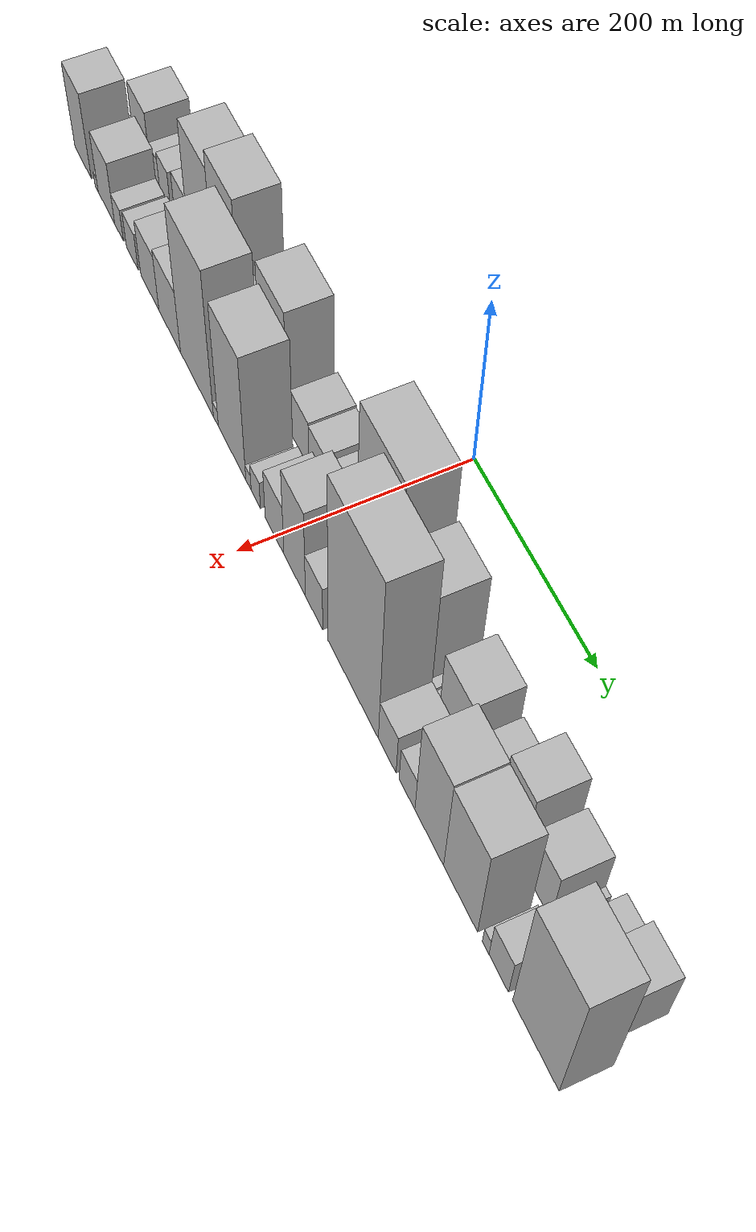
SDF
<sdf version="1.6">
 <world name="default">
  <scene>
   <sky><clouds><speed>12</speed></clouds></sky>
   <ambient>0.4 0.4 0.4 1</ambient>
   <background>0.7 0.7 0.7 1</background>
   <shadows>1</shadows>
  </scene>
  <gravity>0 0 -9.8066</gravity>
  <magnetic_field>6e-06 2.3e-05 -4.2e-05</magnetic_field>
  <physics default="0" name="default_physics" type="ode">
   <ode>
    <solver>
     <type>quick</type>
     <iters>10</iters>
     <sor>1.0</sor>
     <use_dynamic_moi_rescaling>0</use_dynamic_moi_rescaling>
    </solver>
    <constraints>
     <cfm>0</cfm>
     <erp>0.2</erp>
     <contact_max_correcting_vel>100</contact_max_correcting_vel>
     <contact_surface_layer>0.001</contact_surface_layer>
    </constraints>
   </ode>
   <max_step_size>0.004</max_step_size>
   <real_time_factor>1</real_time_factor>
   <real_time_update_rate>250</real_time_update_rate>
  </physics>
  <light name="sun" type="directional">
   <pose>0 0 10 0 0 0</pose>
   <diffuse>0.8 0.8 0.8 1</diffuse>
   <specular>0.2 0.2 0.2 1</specular>
   <attenuation>
    <range>1000</range>
    <constant>0.9</constant>
    <linear>0.01</linear>
    <quadratic>0.001</quadratic>
   </attenuation>
   <direction>-0.5 0.1 -0.9</direction>
  </light>
  <model name="building_1">
   <static>1</static>
   <pose>100.0000 -424.5669 0 0.000000 0.000000 0.000000</pose>
   <link name="link">
    <pose>0 0 9.00 0 0 0</pose>
    <collision name="collision"><geometry><box><size>40.0000 8.8662 18.0000</size></box></geometry></collision>
    <visual name="visual">
     <cast_shadows>0</cast_shadows>
     <geometry><box><size>40.0000 8.8662 18.0000</size></box></geometry>
     <material>
      <script>
       <uri>model://HANNAS_wall/materials/scripts</uri>
       <uri>model://HANNAS_wall/materials/textures</uri>
       <name>vrc/HANNAS_wall</name>
      </script>
     </material>
    </visual>
   </link>
  </model>
  <model name="building_2">
   <static>1</static>
   <pose>100.0000 -397.2516 0 0.000000 0.000000 0.000000</pose>
   <link name="link">
    <pose>0 0 36.00 0 0 0</pose>
    <collision name="collision"><geometry><box><size>40.0000 39.7645 72.0000</size></box></geometry></collision>
    <visual name="visual">
     <cast_shadows>0</cast_shadows>
     <geometry><box><size>40.0000 39.7645 72.0000</size></box></geometry>
     <material>
      <script>
       <uri>model://HANNAS_wall/materials/scripts</uri>
       <uri>model://HANNAS_wall/materials/textures</uri>
       <name>vrc/HANNAS_wall</name>
      </script>
     </material>
    </visual>
   </link>
  </model>
  <model name="building_3">
   <static>1</static>
   <pose>100.0000 -367.1913 0 0.000000 0.000000 0.000000</pose>
   <link name="link">
    <pose>0 0 18.00 0 0 0</pose>
    <collision name="collision"><geometry><box><size>40.0000 20.3561 36.0000</size></box></geometry></collision>
    <visual name="visual">
     <cast_shadows>0</cast_shadows>
     <geometry><box><size>40.0000 20.3561 36.0000</size></box></geometry>
     <material>
      <script>
       <uri>model://HANNAS_wall/materials/scripts</uri>
       <uri>model://HANNAS_wall/materials/textures</uri>
       <name>vrc/HANNAS_wall</name>
      </script>
     </material>
    </visual>
   </link>
  </model>
  <model name="building_4">
   <static>1</static>
   <pose>100.0000 -344.6293 0 0.000000 0.000000 0.000000</pose>
   <link name="link">
    <pose>0 0 22.50 0 0 0</pose>
    <collision name="collision"><geometry><box><size>40.0000 24.7679 45.0000</size></box></geometry></collision>
    <visual name="visual">
     <cast_shadows>0</cast_shadows>
     <geometry><box><size>40.0000 24.7679 45.0000</size></box></geometry>
     <material>
      <script>
       <uri>model://HANNAS_wall/materials/scripts</uri>
       <uri>model://HANNAS_wall/materials/textures</uri>
       <name>vrc/HANNAS_wall</name>
      </script>
     </material>
    </visual>
   </link>
  </model>
  <model name="building_5">
   <static>1</static>
   <pose>100.0000 -306.7148 0 0.000000 0.000000 0.000000</pose>
   <link name="link">
    <pose>0 0 28.50 0 0 0</pose>
    <collision name="collision"><geometry><box><size>40.0000 31.0610 57.0000</size></box></geometry></collision>
    <visual name="visual">
     <cast_shadows>0</cast_shadows>
     <geometry><box><size>40.0000 31.0610 57.0000</size></box></geometry>
     <material>
      <script>
       <uri>model://HANNAS_wall/materials/scripts</uri>
       <uri>model://HANNAS_wall/materials/textures</uri>
       <name>vrc/HANNAS_wall</name>
      </script>
     </material>
    </visual>
   </link>
  </model>
  <model name="building_6">
   <static>1</static>
   <pose>100.0000 -263.0506 0 0.000000 0.000000 0.000000</pose>
   <link name="link">
    <pose>0 0 75.00 0 0 0</pose>
    <collision name="collision"><geometry><box><size>40.0000 56.2675 150.0000</size></box></geometry></collision>
    <visual name="visual">
     <cast_shadows>0</cast_shadows>
     <geometry><box><size>40.0000 56.2675 150.0000</size></box></geometry>
     <material>
      <script>
       <uri>model://HANNAS_wall/materials/scripts</uri>
       <uri>model://HANNAS_wall/materials/textures</uri>
       <name>vrc/HANNAS_wall</name>
      </script>
     </material>
    </visual>
   </link>
  </model>
  <model name="building_7">
   <static>1</static>
   <pose>100.0000 -208.0769 0 0.000000 0.000000 0.000000</pose>
   <link name="link">
    <pose>0 0 85.50 0 0 0</pose>
    <collision name="collision"><geometry><box><size>40.0000 53.6799 171.0000</size></box></geometry></collision>
    <visual name="visual">
     <cast_shadows>0</cast_shadows>
     <geometry><box><size>40.0000 53.6799 171.0000</size></box></geometry>
     <material>
      <script>
       <uri>model://HANNAS_wall/materials/scripts</uri>
       <uri>model://HANNAS_wall/materials/textures</uri>
       <name>vrc/HANNAS_wall</name>
      </script>
     </material>
    </visual>
   </link>
  </model>
  <model name="building_8">
   <static>1</static>
   <pose>100.0000 -162.0882 0 0.000000 0.000000 0.000000</pose>
   <link name="link">
    <pose>0 0 37.50 0 0 0</pose>
    <collision name="collision"><geometry><box><size>40.0000 38.2975 75.0000</size></box></geometry></collision>
    <visual name="visual">
     <cast_shadows>0</cast_shadows>
     <geometry><box><size>40.0000 38.2975 75.0000</size></box></geometry>
     <material>
      <script>
       <uri>model://HANNAS_wall/materials/scripts</uri>
       <uri>model://HANNAS_wall/materials/textures</uri>
       <name>vrc/HANNAS_wall</name>
      </script>
     </material>
    </visual>
   </link>
  </model>
  <model name="building_9">
   <static>1</static>
   <pose>100.0000 -113.6515 0 0.000000 0.000000 0.000000</pose>
   <link name="link">
    <pose>0 0 73.50 0 0 0</pose>
    <collision name="collision"><geometry><box><size>40.0000 52.5759 147.0000</size></box></geometry></collision>
    <visual name="visual">
     <cast_shadows>0</cast_shadows>
     <geometry><box><size>40.0000 52.5759 147.0000</size></box></geometry>
     <material>
      <script>
       <uri>model://HANNAS_wall/materials/scripts</uri>
       <uri>model://HANNAS_wall/materials/textures</uri>
       <name>vrc/HANNAS_wall</name>
      </script>
     </material>
    </visual>
   </link>
  </model>
  <model name="building_10">
   <static>1</static>
   <pose>100.0000 -63.4851 0 0.000000 0.000000 0.000000</pose>
   <link name="link">
    <pose>0 0 30.00 0 0 0</pose>
    <collision name="collision"><geometry><box><size>40.0000 33.7569 60.0000</size></box></geometry></collision>
    <visual name="visual">
     <cast_shadows>0</cast_shadows>
     <geometry><box><size>40.0000 33.7569 60.0000</size></box></geometry>
     <material>
      <script>
       <uri>model://HANNAS_wall/materials/scripts</uri>
       <uri>model://HANNAS_wall/materials/textures</uri>
       <name>vrc/HANNAS_wall</name>
      </script>
     </material>
    </visual>
   </link>
  </model>
  <model name="building_11">
   <static>1</static>
   <pose>100.0000 -31.4817 0 0.000000 0.000000 0.000000</pose>
   <link name="link">
    <pose>0 0 28.50 0 0 0</pose>
    <collision name="collision"><geometry><box><size>40.0000 30.2500 57.0000</size></box></geometry></collision>
    <visual name="visual">
     <cast_shadows>0</cast_shadows>
     <geometry><box><size>40.0000 30.2500 57.0000</size></box></geometry>
     <material>
      <script>
       <uri>model://HANNAS_wall/materials/scripts</uri>
       <uri>model://HANNAS_wall/materials/textures</uri>
       <name>vrc/HANNAS_wall</name>
      </script>
     </material>
    </visual>
   </link>
  </model>
  <model name="building_12">
   <static>1</static>
   <pose>100.0000 -3.8752 0 0.000000 0.000000 0.000000</pose>
   <link name="link">
    <pose>0 0 24.00 0 0 0</pose>
    <collision name="collision"><geometry><box><size>40.0000 24.9629 48.0000</size></box></geometry></collision>
    <visual name="visual">
     <cast_shadows>0</cast_shadows>
     <geometry><box><size>40.0000 24.9629 48.0000</size></box></geometry>
     <material>
      <script>
       <uri>model://HANNAS_wall/materials/scripts</uri>
       <uri>model://HANNAS_wall/materials/textures</uri>
       <name>vrc/HANNAS_wall</name>
      </script>
     </material>
    </visual>
   </link>
  </model>
  <model name="building_13">
   <static>1</static>
   <pose>100.0000 24.8235 0 0.000000 0.000000 0.000000</pose>
   <link name="link">
    <pose>0 0 31.50 0 0 0</pose>
    <collision name="collision"><geometry><box><size>40.0000 32.4345 63.0000</size></box></geometry></collision>
    <visual name="visual">
     <cast_shadows>0</cast_shadows>
     <geometry><box><size>40.0000 32.4345 63.0000</size></box></geometry>
     <material>
      <script>
       <uri>model://HANNAS_wall/materials/scripts</uri>
       <uri>model://HANNAS_wall/materials/textures</uri>
       <name>vrc/HANNAS_wall</name>
      </script>
     </material>
    </visual>
   </link>
  </model>
  <model name="building_14">
   <static>1</static>
   <pose>100.0000 77.2374 0 0.000000 0.000000 0.000000</pose>
   <link name="link">
    <pose>0 0 102.00 0 0 0</pose>
    <collision name="collision"><geometry><box><size>40.0000 72.3935 204.0000</size></box></geometry></collision>
    <visual name="visual">
     <cast_shadows>0</cast_shadows>
     <geometry><box><size>40.0000 72.3935 204.0000</size></box></geometry>
     <material>
      <script>
       <uri>model://HANNAS_wall/materials/scripts</uri>
       <uri>model://HANNAS_wall/materials/textures</uri>
       <name>vrc/HANNAS_wall</name>
      </script>
     </material>
    </visual>
   </link>
  </model>
  <model name="building_15">
   <static>1</static>
   <pose>100.0000 141.5646 0 0.000000 0.000000 0.000000</pose>
   <link name="link">
    <pose>0 0 69.00 0 0 0</pose>
    <collision name="collision"><geometry><box><size>40.0000 48.2609 138.0000</size></box></geometry></collision>
    <visual name="visual">
     <cast_shadows>0</cast_shadows>
     <geometry><box><size>40.0000 48.2609 138.0000</size></box></geometry>
     <material>
      <script>
       <uri>model://HANNAS_wall/materials/scripts</uri>
       <uri>model://HANNAS_wall/materials/textures</uri>
       <name>vrc/HANNAS_wall</name>
      </script>
     </material>
    </visual>
   </link>
  </model>
  <model name="building_16">
   <static>1</static>
   <pose>100.0000 170.1767 0 0.000000 0.000000 0.000000</pose>
   <link name="link">
    <pose>0 0 10.50 0 0 0</pose>
    <collision name="collision"><geometry><box><size>40.0000 8.9633 21.0000</size></box></geometry></collision>
    <visual name="visual">
     <cast_shadows>0</cast_shadows>
     <geometry><box><size>40.0000 8.9633 21.0000</size></box></geometry>
     <material>
      <script>
       <uri>model://HANNAS_wall/materials/scripts</uri>
       <uri>model://HANNAS_wall/materials/textures</uri>
       <name>vrc/HANNAS_wall</name>
      </script>
     </material>
    </visual>
   </link>
  </model>
  <model name="building_17">
   <static>1</static>
   <pose>100.0000 178.5999 0 0.000000 0.000000 0.000000</pose>
   <link name="link">
    <pose>0 0 9.00 0 0 0</pose>
    <collision name="collision"><geometry><box><size>40.0000 7.8832 18.0000</size></box></geometry></collision>
    <visual name="visual">
     <cast_shadows>0</cast_shadows>
     <geometry><box><size>40.0000 7.8832 18.0000</size></box></geometry>
     <material>
      <script>
       <uri>model://HANNAS_wall/materials/scripts</uri>
       <uri>model://HANNAS_wall/materials/textures</uri>
       <name>vrc/HANNAS_wall</name>
      </script>
     </material>
    </visual>
   </link>
  </model>
  <model name="building_18">
   <static>1</static>
   <pose>100.0000 204.4140 0 0.000000 0.000000 0.000000</pose>
   <link name="link">
    <pose>0 0 43.50 0 0 0</pose>
    <collision name="collision"><geometry><box><size>40.0000 43.7451 87.0000</size></box></geometry></collision>
    <visual name="visual">
     <cast_shadows>0</cast_shadows>
     <geometry><box><size>40.0000 43.7451 87.0000</size></box></geometry>
     <material>
      <script>
       <uri>model://HANNAS_wall/materials/scripts</uri>
       <uri>model://HANNAS_wall/materials/textures</uri>
       <name>vrc/HANNAS_wall</name>
      </script>
     </material>
    </visual>
   </link>
  </model>
  <model name="building_19">
   <static>1</static>
   <pose>100.0000 242.1128 0 0.000000 0.000000 0.000000</pose>
   <link name="link">
    <pose>0 0 22.50 0 0 0</pose>
    <collision name="collision"><geometry><box><size>40.0000 25.6525 45.0000</size></box></geometry></collision>
    <visual name="visual">
     <cast_shadows>0</cast_shadows>
     <geometry><box><size>40.0000 25.6525 45.0000</size></box></geometry>
     <material>
      <script>
       <uri>model://HANNAS_wall/materials/scripts</uri>
       <uri>model://HANNAS_wall/materials/textures</uri>
       <name>vrc/HANNAS_wall</name>
      </script>
     </material>
    </visual>
   </link>
  </model>
  <model name="building_20">
   <static>1</static>
   <pose>100.0000 265.5153 0 0.000000 0.000000 0.000000</pose>
   <link name="link">
    <pose>0 0 19.50 0 0 0</pose>
    <collision name="collision"><geometry><box><size>40.0000 21.1525 39.0000</size></box></geometry></collision>
    <visual name="visual">
     <cast_shadows>0</cast_shadows>
     <geometry><box><size>40.0000 21.1525 39.0000</size></box></geometry>
     <material>
      <script>
       <uri>model://HANNAS_wall/materials/scripts</uri>
       <uri>model://HANNAS_wall/materials/textures</uri>
       <name>vrc/HANNAS_wall</name>
      </script>
     </material>
    </visual>
   </link>
  </model>
  <model name="building_21">
   <static>1</static>
   <pose>100.0000 294.0036 0 0.000000 0.000000 0.000000</pose>
   <link name="link">
    <pose>0 0 55.50 0 0 0</pose>
    <collision name="collision"><geometry><box><size>40.0000 35.8241 111.0000</size></box></geometry></collision>
    <visual name="visual">
     <cast_shadows>0</cast_shadows>
     <geometry><box><size>40.0000 35.8241 111.0000</size></box></geometry>
     <material>
      <script>
       <uri>model://HANNAS_wall/materials/scripts</uri>
       <uri>model://HANNAS_wall/materials/textures</uri>
       <name>vrc/HANNAS_wall</name>
      </script>
     </material>
    </visual>
   </link>
  </model>
  <model name="building_22">
   <static>1</static>
   <pose>100.0000 334.6105 0 0.000000 0.000000 0.000000</pose>
   <link name="link">
    <pose>0 0 36.00 0 0 0</pose>
    <collision name="collision"><geometry><box><size>40.0000 37.3898 72.0000</size></box></geometry></collision>
    <visual name="visual">
     <cast_shadows>0</cast_shadows>
     <geometry><box><size>40.0000 37.3898 72.0000</size></box></geometry>
     <material>
      <script>
       <uri>model://HANNAS_wall/materials/scripts</uri>
       <uri>model://HANNAS_wall/materials/textures</uri>
       <name>vrc/HANNAS_wall</name>
      </script>
     </material>
    </visual>
   </link>
  </model>
  <model name="building_23">
   <static>1</static>
   <pose>100.0000 357.2480 0 0.000000 0.000000 0.000000</pose>
   <link name="link">
    <pose>0 0 9.00 0 0 0</pose>
    <collision name="collision"><geometry><box><size>40.0000 7.8852 18.0000</size></box></geometry></collision>
    <visual name="visual">
     <cast_shadows>0</cast_shadows>
     <geometry><box><size>40.0000 7.8852 18.0000</size></box></geometry>
     <material>
      <script>
       <uri>model://HANNAS_wall/materials/scripts</uri>
       <uri>model://HANNAS_wall/materials/textures</uri>
       <name>vrc/HANNAS_wall</name>
      </script>
     </material>
    </visual>
   </link>
  </model>
  <model name="building_24">
   <static>1</static>
   <pose>100.0000 369.7356 0 0.000000 0.000000 0.000000</pose>
   <link name="link">
    <pose>0 0 7.50 0 0 0</pose>
    <collision name="collision"><geometry><box><size>40.0000 7.0900 15.0000</size></box></geometry></collision>
    <visual name="visual">
     <cast_shadows>0</cast_shadows>
     <geometry><box><size>40.0000 7.0900 15.0000</size></box></geometry>
     <material>
      <script>
       <uri>model://HANNAS_wall/materials/scripts</uri>
       <uri>model://HANNAS_wall/materials/textures</uri>
       <name>vrc/HANNAS_wall</name>
      </script>
     </material>
    </visual>
   </link>
  </model>
  <model name="building_25">
   <static>1</static>
   <pose>100.0000 387.6641 0 0.000000 0.000000 0.000000</pose>
   <link name="link">
    <pose>0 0 27.00 0 0 0</pose>
    <collision name="collision"><geometry><box><size>40.0000 28.7670 54.0000</size></box></geometry></collision>
    <visual name="visual">
     <cast_shadows>0</cast_shadows>
     <geometry><box><size>40.0000 28.7670 54.0000</size></box></geometry>
     <material>
      <script>
       <uri>model://HANNAS_wall/materials/scripts</uri>
       <uri>model://HANNAS_wall/materials/textures</uri>
       <name>vrc/HANNAS_wall</name>
      </script>
     </material>
    </visual>
   </link>
  </model>
  <model name="building_26">
   <static>1</static>
   <pose>100.0000 422.2964 0 0.000000 0.000000 0.000000</pose>
   <link name="link">
    <pose>0 0 37.50 0 0 0</pose>
    <collision name="collision"><geometry><box><size>40.0000 40.4977 75.0000</size></box></geometry></collision>
    <visual name="visual">
     <cast_shadows>0</cast_shadows>
     <geometry><box><size>40.0000 40.4977 75.0000</size></box></geometry>
     <material>
      <script>
       <uri>model://HANNAS_wall/materials/scripts</uri>
       <uri>model://HANNAS_wall/materials/textures</uri>
       <name>vrc/HANNAS_wall</name>
      </script>
     </material>
    </visual>
   </link>
  </model>
  <model name="building_27">
   <static>1</static>
   <pose>149.0000 -411.1014 0 0.000000 0.000000 0.000000</pose>
   <link name="link">
    <pose>0 0 51.00 0 0 0</pose>
    <collision name="collision"><geometry><box><size>40.0000 39.7972 102.0000</size></box></geometry></collision>
    <visual name="visual">
     <cast_shadows>0</cast_shadows>
     <geometry><box><size>40.0000 39.7972 102.0000</size></box></geometry>
     <material>
      <script>
       <uri>model://HANNAS_wall/materials/scripts</uri>
       <uri>model://HANNAS_wall/materials/textures</uri>
       <name>vrc/HANNAS_wall</name>
      </script>
     </material>
    </visual>
   </link>
  </model>
  <model name="building_28">
   <static>1</static>
   <pose>149.0000 -378.4729 0 0.000000 0.000000 0.000000</pose>
   <link name="link">
    <pose>0 0 9.00 0 0 0</pose>
    <collision name="collision"><geometry><box><size>40.0000 7.4599 18.0000</size></box></geometry></collision>
    <visual name="visual">
     <cast_shadows>0</cast_shadows>
     <geometry><box><size>40.0000 7.4599 18.0000</size></box></geometry>
     <material>
      <script>
       <uri>model://HANNAS_wall/materials/scripts</uri>
       <uri>model://HANNAS_wall/materials/textures</uri>
       <name>vrc/HANNAS_wall</name>
      </script>
     </material>
    </visual>
   </link>
  </model>
  <model name="building_29">
   <static>1</static>
   <pose>149.0000 -355.3488 0 0.000000 0.000000 0.000000</pose>
   <link name="link">
    <pose>0 0 37.50 0 0 0</pose>
    <collision name="collision"><geometry><box><size>40.0000 38.7883 75.0000</size></box></geometry></collision>
    <visual name="visual">
     <cast_shadows>0</cast_shadows>
     <geometry><box><size>40.0000 38.7883 75.0000</size></box></geometry>
     <material>
      <script>
       <uri>model://HANNAS_wall/materials/scripts</uri>
       <uri>model://HANNAS_wall/materials/textures</uri>
       <name>vrc/HANNAS_wall</name>
      </script>
     </material>
    </visual>
   </link>
  </model>
  <model name="building_30">
   <static>1</static>
   <pose>149.0000 -325.8457 0 0.000000 0.000000 0.000000</pose>
   <link name="link">
    <pose>0 0 19.50 0 0 0</pose>
    <collision name="collision"><geometry><box><size>40.0000 20.2178 39.0000</size></box></geometry></collision>
    <visual name="visual">
     <cast_shadows>0</cast_shadows>
     <geometry><box><size>40.0000 20.2178 39.0000</size></box></geometry>
     <material>
      <script>
       <uri>model://HANNAS_wall/materials/scripts</uri>
       <uri>model://HANNAS_wall/materials/textures</uri>
       <name>vrc/HANNAS_wall</name>
      </script>
     </material>
    </visual>
   </link>
  </model>
  <model name="building_31">
   <static>1</static>
   <pose>149.0000 -295.4647 0 0.000000 0.000000 0.000000</pose>
   <link name="link">
    <pose>0 0 22.50 0 0 0</pose>
    <collision name="collision"><geometry><box><size>40.0000 26.5442 45.0000</size></box></geometry></collision>
    <visual name="visual">
     <cast_shadows>0</cast_shadows>
     <geometry><box><size>40.0000 26.5442 45.0000</size></box></geometry>
     <material>
      <script>
       <uri>model://HANNAS_wall/materials/scripts</uri>
       <uri>model://HANNAS_wall/materials/textures</uri>
       <name>vrc/HANNAS_wall</name>
      </script>
     </material>
    </visual>
   </link>
  </model>
  <model name="building_32">
   <static>1</static>
   <pose>149.0000 -256.0464 0 0.000000 0.000000 0.000000</pose>
   <link name="link">
    <pose>0 0 34.50 0 0 0</pose>
    <collision name="collision"><geometry><box><size>40.0000 40.2923 69.0000</size></box></geometry></collision>
    <visual name="visual">
     <cast_shadows>0</cast_shadows>
     <geometry><box><size>40.0000 40.2923 69.0000</size></box></geometry>
     <material>
      <script>
       <uri>model://HANNAS_wall/materials/scripts</uri>
       <uri>model://HANNAS_wall/materials/textures</uri>
       <name>vrc/HANNAS_wall</name>
      </script>
     </material>
    </visual>
   </link>
  </model>
  <model name="building_33">
   <static>1</static>
   <pose>149.0000 -212.5605 0 0.000000 0.000000 0.000000</pose>
   <link name="link">
    <pose>0 0 39.00 0 0 0</pose>
    <collision name="collision"><geometry><box><size>40.0000 46.6795 78.0000</size></box></geometry></collision>
    <visual name="visual">
     <cast_shadows>0</cast_shadows>
     <geometry><box><size>40.0000 46.6795 78.0000</size></box></geometry>
     <material>
      <script>
       <uri>model://HANNAS_wall/materials/scripts</uri>
       <uri>model://HANNAS_wall/materials/textures</uri>
       <name>vrc/HANNAS_wall</name>
      </script>
     </material>
    </visual>
   </link>
  </model>
  <model name="building_34">
   <static>1</static>
   <pose>149.0000 -154.9730 0 0.000000 0.000000 0.000000</pose>
   <link name="link">
    <pose>0 0 91.50 0 0 0</pose>
    <collision name="collision"><geometry><box><size>40.0000 68.4954 183.0000</size></box></geometry></collision>
    <visual name="visual">
     <cast_shadows>0</cast_shadows>
     <geometry><box><size>40.0000 68.4954 183.0000</size></box></geometry>
     <material>
      <script>
       <uri>model://HANNAS_wall/materials/scripts</uri>
       <uri>model://HANNAS_wall/materials/textures</uri>
       <name>vrc/HANNAS_wall</name>
      </script>
     </material>
    </visual>
   </link>
  </model>
  <model name="building_35">
   <static>1</static>
   <pose>149.0000 -115.7268 0 0.000000 0.000000 0.000000</pose>
   <link name="link">
    <pose>0 0 10.50 0 0 0</pose>
    <collision name="collision"><geometry><box><size>40.0000 9.9970 21.0000</size></box></geometry></collision>
    <visual name="visual">
     <cast_shadows>0</cast_shadows>
     <geometry><box><size>40.0000 9.9970 21.0000</size></box></geometry>
     <material>
      <script>
       <uri>model://HANNAS_wall/materials/scripts</uri>
       <uri>model://HANNAS_wall/materials/textures</uri>
       <name>vrc/HANNAS_wall</name>
      </script>
     </material>
    </visual>
   </link>
  </model>
  <model name="building_36">
   <static>1</static>
   <pose>149.0000 -83.3577 0 0.000000 0.000000 0.000000</pose>
   <link name="link">
    <pose>0 0 79.50 0 0 0</pose>
    <collision name="collision"><geometry><box><size>40.0000 54.7414 159.0000</size></box></geometry></collision>
    <visual name="visual">
     <cast_shadows>0</cast_shadows>
     <geometry><box><size>40.0000 54.7414 159.0000</size></box></geometry>
     <material>
      <script>
       <uri>model://HANNAS_wall/materials/scripts</uri>
       <uri>model://HANNAS_wall/materials/textures</uri>
       <name>vrc/HANNAS_wall</name>
      </script>
     </material>
    </visual>
   </link>
  </model>
  <model name="building_37">
   <static>1</static>
   <pose>149.0000 -50.7852 0 0.000000 0.000000 0.000000</pose>
   <link name="link">
    <pose>0 0 10.50 0 0 0</pose>
    <collision name="collision"><geometry><box><size>40.0000 10.4036 21.0000</size></box></geometry></collision>
    <visual name="visual">
     <cast_shadows>0</cast_shadows>
     <geometry><box><size>40.0000 10.4036 21.0000</size></box></geometry>
     <material>
      <script>
       <uri>model://HANNAS_wall/materials/scripts</uri>
       <uri>model://HANNAS_wall/materials/textures</uri>
       <name>vrc/HANNAS_wall</name>
      </script>
     </material>
    </visual>
   </link>
  </model>
  <model name="building_38">
   <static>1</static>
   <pose>149.0000 -36.5796 0 0.000000 0.000000 0.000000</pose>
   <link name="link">
    <pose>0 0 18.00 0 0 0</pose>
    <collision name="collision"><geometry><box><size>40.0000 18.0075 36.0000</size></box></geometry></collision>
    <visual name="visual">
     <cast_shadows>0</cast_shadows>
     <geometry><box><size>40.0000 18.0075 36.0000</size></box></geometry>
     <material>
      <script>
       <uri>model://HANNAS_wall/materials/scripts</uri>
       <uri>model://HANNAS_wall/materials/textures</uri>
       <name>vrc/HANNAS_wall</name>
      </script>
     </material>
    </visual>
   </link>
  </model>
  <model name="building_39">
   <static>1</static>
   <pose>149.0000 -0.8917 0 0.000000 0.000000 0.000000</pose>
   <link name="link">
    <pose>0 0 33.00 0 0 0</pose>
    <collision name="collision"><geometry><box><size>40.0000 35.3683 66.0000</size></box></geometry></collision>
    <visual name="visual">
     <cast_shadows>0</cast_shadows>
     <geometry><box><size>40.0000 35.3683 66.0000</size></box></geometry>
     <material>
      <script>
       <uri>model://HANNAS_wall/materials/scripts</uri>
       <uri>model://HANNAS_wall/materials/textures</uri>
       <name>vrc/HANNAS_wall</name>
      </script>
     </material>
    </visual>
   </link>
  </model>
  <model name="building_40">
   <static>1</static>
   <pose>149.0000 36.6306 0 0.000000 0.000000 0.000000</pose>
   <link name="link">
    <pose>0 0 58.50 0 0 0</pose>
    <collision name="collision"><geometry><box><size>40.0000 39.6763 117.0000</size></box></geometry></collision>
    <visual name="visual">
     <cast_shadows>0</cast_shadows>
     <geometry><box><size>40.0000 39.6763 117.0000</size></box></geometry>
     <material>
      <script>
       <uri>model://HANNAS_wall/materials/scripts</uri>
       <uri>model://HANNAS_wall/materials/textures</uri>
       <name>vrc/HANNAS_wall</name>
      </script>
     </material>
    </visual>
   </link>
  </model>
  <model name="building_41">
   <static>1</static>
   <pose>149.0000 72.0424 0 0.000000 0.000000 0.000000</pose>
   <link name="link">
    <pose>0 0 30.00 0 0 0</pose>
    <collision name="collision"><geometry><box><size>40.0000 31.1471 60.0000</size></box></geometry></collision>
    <visual name="visual">
     <cast_shadows>0</cast_shadows>
     <geometry><box><size>40.0000 31.1471 60.0000</size></box></geometry>
     <material>
      <script>
       <uri>model://HANNAS_wall/materials/scripts</uri>
       <uri>model://HANNAS_wall/materials/textures</uri>
       <name>vrc/HANNAS_wall</name>
      </script>
     </material>
    </visual>
   </link>
  </model>
  <model name="building_42">
   <static>1</static>
   <pose>149.0000 140.1961 0 0.000000 0.000000 0.000000</pose>
   <link name="link">
    <pose>0 0 112.50 0 0 0</pose>
    <collision name="collision"><geometry><box><size>40.0000 87.1603 225.0000</size></box></geometry></collision>
    <visual name="visual">
     <cast_shadows>0</cast_shadows>
     <geometry><box><size>40.0000 87.1603 225.0000</size></box></geometry>
     <material>
      <script>
       <uri>model://HANNAS_wall/materials/scripts</uri>
       <uri>model://HANNAS_wall/materials/textures</uri>
       <name>vrc/HANNAS_wall</name>
      </script>
     </material>
    </visual>
   </link>
  </model>
  <model name="building_43">
   <static>1</static>
   <pose>149.0000 198.4248 0 0.000000 0.000000 0.000000</pose>
   <link name="link">
    <pose>0 0 28.50 0 0 0</pose>
    <collision name="collision"><geometry><box><size>40.0000 29.2972 57.0000</size></box></geometry></collision>
    <visual name="visual">
     <cast_shadows>0</cast_shadows>
     <geometry><box><size>40.0000 29.2972 57.0000</size></box></geometry>
     <material>
      <script>
       <uri>model://HANNAS_wall/materials/scripts</uri>
       <uri>model://HANNAS_wall/materials/textures</uri>
       <name>vrc/HANNAS_wall</name>
      </script>
     </material>
    </visual>
   </link>
  </model>
  <model name="building_44">
   <static>1</static>
   <pose>149.0000 230.8330 0 0.000000 0.000000 0.000000</pose>
   <link name="link">
    <pose>0 0 24.00 0 0 0</pose>
    <collision name="collision"><geometry><box><size>40.0000 25.5192 48.0000</size></box></geometry></collision>
    <visual name="visual">
     <cast_shadows>0</cast_shadows>
     <geometry><box><size>40.0000 25.5192 48.0000</size></box></geometry>
     <material>
      <script>
       <uri>model://HANNAS_wall/materials/scripts</uri>
       <uri>model://HANNAS_wall/materials/textures</uri>
       <name>vrc/HANNAS_wall</name>
      </script>
     </material>
    </visual>
   </link>
  </model>
  <model name="building_45">
   <static>1</static>
   <pose>149.0000 266.2361 0 0.000000 0.000000 0.000000</pose>
   <link name="link">
    <pose>0 0 67.50 0 0 0</pose>
    <collision name="collision"><geometry><box><size>40.0000 45.2870 135.0000</size></box></geometry></collision>
    <visual name="visual">
     <cast_shadows>0</cast_shadows>
     <geometry><box><size>40.0000 45.2870 135.0000</size></box></geometry>
     <material>
      <script>
       <uri>model://HANNAS_wall/materials/scripts</uri>
       <uri>model://HANNAS_wall/materials/textures</uri>
       <name>vrc/HANNAS_wall</name>
      </script>
     </material>
    </visual>
   </link>
  </model>
  <model name="building_46">
   <static>1</static>
   <pose>149.0000 314.7834 0 0.000000 0.000000 0.000000</pose>
   <link name="link">
    <pose>0 0 66.00 0 0 0</pose>
    <collision name="collision"><geometry><box><size>40.0000 51.8076 132.0000</size></box></geometry></collision>
    <visual name="visual">
     <cast_shadows>0</cast_shadows>
     <geometry><box><size>40.0000 51.8076 132.0000</size></box></geometry>
     <material>
      <script>
       <uri>model://HANNAS_wall/materials/scripts</uri>
       <uri>model://HANNAS_wall/materials/textures</uri>
       <name>vrc/HANNAS_wall</name>
      </script>
     </material>
    </visual>
   </link>
  </model>
  <model name="building_47">
   <static>1</static>
   <pose>149.0000 352.6515 0 0.000000 0.000000 0.000000</pose>
   <link name="link">
    <pose>0 0 12.00 0 0 0</pose>
    <collision name="collision"><geometry><box><size>40.0000 9.9285 24.0000</size></box></geometry></collision>
    <visual name="visual">
     <cast_shadows>0</cast_shadows>
     <geometry><box><size>40.0000 9.9285 24.0000</size></box></geometry>
     <material>
      <script>
       <uri>model://HANNAS_wall/materials/scripts</uri>
       <uri>model://HANNAS_wall/materials/textures</uri>
       <name>vrc/HANNAS_wall</name>
      </script>
     </material>
    </visual>
   </link>
  </model>
  <model name="building_48">
   <static>1</static>
   <pose>149.0000 371.8386 0 0.000000 0.000000 0.000000</pose>
   <link name="link">
    <pose>0 0 27.00 0 0 0</pose>
    <collision name="collision"><geometry><box><size>40.0000 28.4457 54.0000</size></box></geometry></collision>
    <visual name="visual">
     <cast_shadows>0</cast_shadows>
     <geometry><box><size>40.0000 28.4457 54.0000</size></box></geometry>
     <material>
      <script>
       <uri>model://HANNAS_wall/materials/scripts</uri>
       <uri>model://HANNAS_wall/materials/textures</uri>
       <name>vrc/HANNAS_wall</name>
      </script>
     </material>
    </visual>
   </link>
  </model>
  <model name="building_49">
   <static>1</static>
   <pose>149.0000 424.7452 0 0.000000 0.000000 0.000000</pose>
   <link name="link">
    <pose>0 0 87.00 0 0 0</pose>
    <collision name="collision"><geometry><box><size>40.0000 65.3676 174.0000</size></box></geometry></collision>
    <visual name="visual">
     <cast_shadows>0</cast_shadows>
     <geometry><box><size>40.0000 65.3676 174.0000</size></box></geometry>
     <material>
      <script>
       <uri>model://HANNAS_wall/materials/scripts</uri>
       <uri>model://HANNAS_wall/materials/textures</uri>
       <name>vrc/HANNAS_wall</name>
      </script>
     </material>
    </visual>
   </link>
  </model>
 </world>
</sdf>
